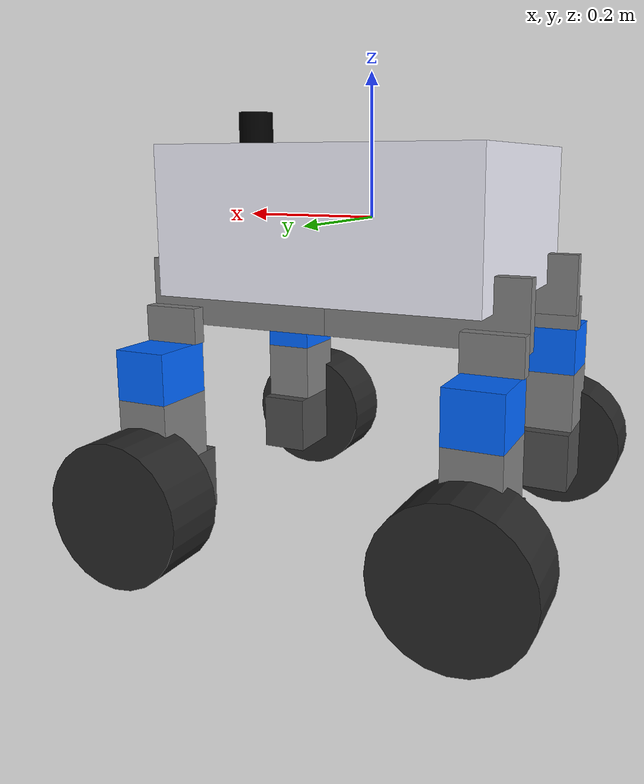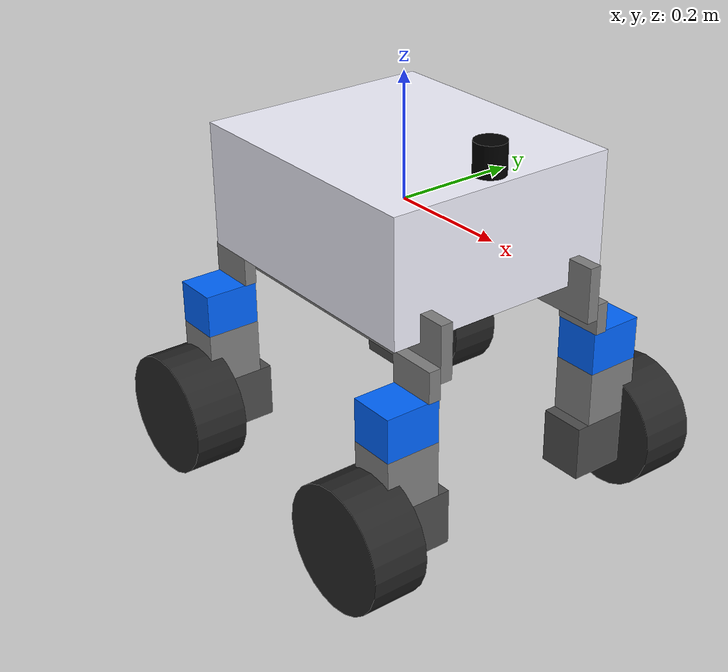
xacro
<?xml version="1.0"?>
<robot name="pf1" xmlns:xacro="http://ros.org/wiki/xacro">

    <!-- define color-->
  <material name="base_link">
    <color rgba="0.95 0.95 1.0 1.0"/>
  </material>
  <material name="lidar">
    <color rgba="0.0 0.0 0.0 1.0"/>
  </material>
  <material name="camera_aluminum">
    <color rgba="0.5 0.5 0.5 1.0"/>
  </material>
  <material name="frame">
    <color rgba="0.5 0.5 0.5 1.0"/>
  </material>
  <material name="gear">
    <color rgba="0.0 0.4 1.0 1.0"/>
  </material>
  <material name="motor">
    <color rgba="0.3 0.3 0.3 1.0"/>
  </material>
  <material name="wheel">
    <color rgba="0.15 0.15 0.15 1.0"/>
  </material>

    <!-- base_footprint-->

    <!-- base_link -->
  <link name="base_link">
    <inertial>
      <origin xyz="0 0 0" rpy="0 0 0"/>
      <mass value="50.0"/>
      <inertia ixx="1.0" ixy="0.0" ixz="0.0" iyy="1.0" iyz="0.0" izz="1.0"/>
    </inertial>
    <visual>
      <geometry>
        <box size="0.45 0.39 0.2"/>
      </geometry>
      <origin xyz="0 0 0" rpy="0 0 0"/>
      <material name="base_link"/>
    </visual>
    <collision>
      <geometry>
        <box size="0.45 0.39 0.2"/>
      </geometry>
      <origin xyz="0 0 0" rpy="0 0 0"/>
      <material name="base_link"/>
    </collision>
  </link>
  <gazebo reference="body_link">
    <material>Gazebo/White</material>
  </gazebo>

    <!-- imu_link -->
  <joint name="imu_link_to_base_link" type="fixed">
    <parent link="base_link"/>
    <child link="imu_link"/>
    <origin xyz="-0 0 0" rpy="0 0 0"/>
  </joint>
  <link name="imu_link">
    <visual>
      <origin xyz="0 0 0.0" rpy="0 0 0"/>
      <geometry>
        <cylinder length="0.01" radius="0.005"/>
      </geometry>
      <material name="lidar"/>
    </visual>
    <collision>
      <origin xyz="0 0 0.0" rpy="0 0 0"/>
      <geometry>
        <cylinder length="0.01" radius="0.005"/>
      </geometry>
      <material name="lidar"/>
    </collision>
  </link>
  <gazebo reference="imu_link">
    <material>Gazebo/Blue</material>
    <gravity>true</gravity>
    <sensor name="imu_sensor" type="imu">
      <always_on>true</always_on>
      <update_rate>100</update_rate>
      <visualize>true</visualize>
      <topic>data</topic>
      <plugin filename="libgazebo_ros_imu_sensor.so" name="imu_plugin">
        <topicName>imu/data</topicName>
        <bodyName>imu_link</bodyName>
        <updateRateHZ>10.0</updateRateHZ>
        <gaussianNoise>0.0</gaussianNoise>
        <xyzOffset>0 0 0</xyzOffset>
        <rpyOffset>0 0 0</rpyOffset>
        <frameName>imu_link</frameName>
      </plugin>
      <pose>0 0 0 0 0 0</pose>
    </sensor>
  </gazebo>

    <!-- base_sensor -->

    <!-- realsense -->

  <!-- set property -->
   <xacro:property name="M_PI" value="3.1415926535897931" />
   <xacro:property name="d435_cam_width" value="0.090"/>
   <xacro:property name="d435_cam_height" value="0.025"/>
   <xacro:property name="d435_cam_depth" value="0.02505"/>
   <xacro:property name="d435_cam_mount_from_center_offset" value="0.0149"/>
   <xacro:property name="d435_cam_depth_px" value="${d435_cam_mount_from_center_offset}"/>
   <xacro:property name="d435_cam_depth_py" value="0.0175"/>
   <xacro:property name="d435_cam_depth_pz" value="${d435_cam_height/2}"/>
   <xacro:property name="deg_to_rad" value="0.01745329251994329577" />

    <!--end of realsense setup-->

    <!-- front_lidar -->
  <joint name="front_lidar_to_base_sensor" type="fixed">
    <parent link="base_link"/>
    <child link="front_lidar"/>

    <origin xyz="0.190 0 0.125" rpy="0 0 0"/>
  </joint>
  <link name="front_lidar">
    <visual>
      <origin xyz="0 0 0.0" rpy="0 0 0"/>
      <geometry>
        <cylinder length="0.05" radius="0.025"/>
      </geometry>
      <material name="lidar"/>
    </visual>
    <collision>
      <origin xyz="0 0 0.0" rpy="0 0 0"/>
      <geometry>
        <cylinder length="0.05" radius="0.025"/>
      </geometry>
      <material name="lidar"/>
    </collision>
  </link>
  <gazebo reference="front_lidar">
    <material>Gazebo/Grey</material>
    <sensor type="ray" name="front_lidar">
      <pose>0 0 0 0 0 0</pose>
      <visualize>true</visualize>
      <update_rate>10</update_rate>
      <ray>
        <scan>
          <horizontal>
            <samples>400</samples>
            <resolution>1</resolution>
            <min_angle>${radians(-180)}</min_angle>
            <max_angle>${radians(180)}</max_angle>
          </horizontal>
        </scan>
        <range>
          <min>0.10</min>
          <max>20.0</max>
          <resolution>0.01</resolution>
        </range>
        <noise>
          <type>gaussian</type>
          <mean>0.0</mean>
          <stddev>0.01</stddev>
        </noise>
      </ray>
      <plugin name="gazebo_ros_lidar_controller" filename="libgazebo_ros_laser.so">
        <topicName>scan</topicName>
        <frameName>front_lidar</frameName>
      </plugin>
    </sensor>
  </gazebo>

    <!-- rear_lidar -->

    <!-- leg_fl -->
  <joint name="frame1_fl_to_base_link" type="fixed">
    <parent link="base_link"/>
    <child  link="frame1_fl"/>
    <origin xyz="0 0.14 -0.1" rpy="0 0 0"/>
  </joint>
  <link name="frame1_fl">
    <visual>
      <geometry>
        <box size="0.27 0.02 0.09"/>
      </geometry>
      <origin xyz="0.135 0 0" rpy="0 0 0"/>
      <material name="frame"/>
    </visual>
    <collision>
      <geometry>
        <box size="0.27 0.02 0.09"/>
      </geometry>
      <origin xyz="0.135 0 0" rpy="0 0 0"/>
      <material name="frame"/>
    </collision>
  </link>
  <gazebo reference="frame1_fl">
    <material>Gazebo/Grey</material>
  </gazebo>

  <joint name="frame2_fl_to_frame1_fl" type="fixed">
    <parent link="frame1_fl"/>
    <child  link="frame2_fl"/>
    <origin xyz="0.23 0.02 -0.045" rpy="0 0 0"/>
  </joint>
  <link name="frame2_fl">
    <visual>
      <geometry>
        <box size="0.08 0.02 0.05"/>
      </geometry>
      <origin xyz="0 0 0" rpy="0 0 0"/>
      <material name="frame"/>
    </visual>
    <collision>
      <geometry>
        <box size="0.08 0.02 0.05"/>
      </geometry>
      <origin xyz="0 0 0" rpy="0 0 0"/>
      <material name="frame"/>
    </collision>
  </link>
  <gazebo reference="frame2_fl">
    <material>Gazebo/Grey</material>
  </gazebo>

  <joint name="gear_fl_to_frame2_fl" type="fixed">
    <parent link="frame2_fl"/>
    <child  link="gear_fl"/>
    <origin xyz="0 0.035 -0.06" rpy="0 0 0"/>
  </joint>
  <link name="gear_fl">
    <visual>
      <geometry>
        <box size="0.075 0.09 0.07"/>
      </geometry>
      <origin xyz="0 0 0" rpy="0 0 0"/>
      <material name="gear"/>
    </visual>
    <collision>
      <geometry>
        <box size="0.075 0.09 0.07"/>
      </geometry>
      <origin xyz="0 0 0" rpy="0 0 0"/>
      <material name="gear"/>
    </collision>
    <inertial>
      <origin xyz="0 0 0" rpy="0 0 0"/>
      <mass value="1.0"/>
      <inertia ixx="1.0" ixy="0.0" ixz="0.0" iyy="1.0" iyz="0.0" izz="1.0"/>
    </inertial>
  </link>
  <gazebo reference="gear_fl">
    <material>Gazebo/Blue</material>
  </gazebo>

  <gazebo reference="frame3_fl_to_gear_fl">
    <material>Gazebo/Blue</material>
  </gazebo>

  <joint name="frame3_fl_to_gear_fl" type="fixed">
    <parent link="gear_fl"/>
    <child  link="frame3_fl"/>
    <origin xyz="0 0.0 -0.08" rpy="0 0 0"/>
  </joint>

  <link name="frame3_fl">
    <visual>
      <geometry>
        <box size="0.075 0.09 0.09"/>
      </geometry>
      <origin xyz="0 0 0" rpy="0 0 0"/>
      <material name="frame"/>
    </visual>
    <collision>
      <geometry>
        <box size="0.075 0.09 0.09"/>
      </geometry>
      <origin xyz="0 0 0" rpy="0 0 0"/>
      <material name="frame"/>
    </collision>
    <inertial>
      <origin xyz="0 0 0" rpy="0 0 0"/>
      <mass value="1.0"/>
      <inertia ixx="1.0" ixy="0.0" ixz="0.0" iyy="1.0" iyz="0.0" izz="1.0"/>
    </inertial>
  </link>
  <gazebo reference="frame3_fl">
    <material>Gazebo/Grey</material>
    <mu1 value="2500" />
    <mu2 value="2500" />
  </gazebo>

  <joint name="motor_fl_to_frame3_fl" type="fixed">
    <parent link="frame3_fl"/>
    <child  link="motor_fl"/>
    <origin xyz="0 -0.02 -0.09" rpy="0 0 0"/>
  </joint>
  <link name="motor_fl">
    <visual>
      <geometry>
        <box size="0.075 0.09 0.09"/>
      </geometry>
      <material name="motor"/>
    </visual>
    <collision>
      <geometry>
        <box size="0.075 0.09 0.09"/>
      </geometry>
      <material name="motor"/>
    </collision>
    <inertial>
      <origin xyz="0 0 0" rpy="0 0 0"/>
      <mass value="1.0"/>
      <inertia ixx="1.0" ixy="0.0" ixz="0.0" iyy="1.0" iyz="0.0" izz="1.0"/>
    </inertial>
  </link>
  <gazebo reference="motor_fl">
    <material>Gazebo/Grey</material>
  </gazebo>

  <joint name="wheel_fl_to_motor_fl" type="continuous">
    <parent link="motor_fl"/>
    <child  link="wheel_fl"/>
    <origin xyz="0 0.09 0" rpy="0 0 0"/>
    <axis xyz="0 1 0"/>
    <limit effort="100" velocity="100"/>
    <dynamics damping="0.1" friction="0.0"/>
  </joint>
  <transmission name="$wheel_fl_trans">
    <type>transmission_interface/SimpleTransmission</type>
    <joint name="wheel_fl_to_motor_fl">
        <hardwareInterface>hardware_interface/VelocityJointInterface</hardwareInterface>
    </joint>
    <actuator name="wheel_fl_motor">
      <hardwareInterface>hardware_interface/VelocityJointInterface</hardwareInterface>
      <mechanismReduction>1</mechanismReduction>
    </actuator>
  </transmission>

  <link name="wheel_fl">
    <visual>
      <geometry>
        <cylinder length="0.09" radius="0.1"/>
      </geometry>
      <origin xyz="0 0 0" rpy="1.57 0 0"/>
      <material name="wheel"/>
    </visual>
    <collision>
      <geometry>
        <cylinder length="0.09" radius="0.1"/>
      </geometry>
      <origin xyz="0 0 0" rpy="1.57 0 0"/>
      <material name="wheel"/>
    </collision>
    <inertial>
      <origin xyz="0 0 0" rpy="0 0 0"/>
      <mass value="10.0"/>
      <inertia ixx="1.0" ixy="0.0" ixz="0.0" iyy="1.0" iyz="0.0" izz="1.0"/>
    </inertial>
  </link>
  <gazebo reference="wheel_fl">
    <material>Gazebo/Black</material>
    <mu1 value="200.0" />
    <mu2 value="100.0" />
    <kp value="10000000.0" />
    <kd value="1.0" />
  </gazebo>

      <!-- leg_bl : mirror leg_fl to the y axis -->
  <joint name="frame1_bl_to_base_link" type="fixed">
    <parent link="base_link"/>
    <child  link="frame1_bl"/>
    <origin xyz="0 0.14 -0.1" rpy="0 0 0"/>
  </joint>
  <link name="frame1_bl">
    <visual>
      <geometry>
        <box size="0.27 0.02 0.09"/>
      </geometry>
      <origin xyz="-0.135 0 0" rpy="0 0 0"/>
      <material name="frame"/>
    </visual>
    <collision>
      <geometry>
        <box size="0.27 0.02 0.09"/>
      </geometry>
      <origin xyz="-0.135 0 0" rpy="0 0 0"/>
      <material name="frame"/>
    </collision>
  </link>
  <gazebo reference="frame1_bl">
    <material>Gazebo/Grey</material>
  </gazebo>

  <joint name="frame2_bl_to_frame1_bl" type="fixed">
    <parent link="frame1_bl"/>
    <child  link="frame2_bl"/>
    <origin xyz="-0.23 0.02 -0.045" rpy="0 0 0"/>
  </joint>
  <link name="frame2_bl">
    <visual>
      <geometry>
        <box size="0.08 0.02 0.05"/>
      </geometry>
      <origin xyz="0 0 0" rpy="0 0 0"/>
      <material name="frame"/>
    </visual>
    <collision>
      <geometry>
        <box size="0.08 0.02 0.05"/>
      </geometry>
      <origin xyz="0 0 0" rpy="0 0 0"/>
      <material name="frame"/>
    </collision>
  </link>
  <gazebo reference="frame2_bl">
    <material>Gazebo/Grey</material>
  </gazebo>

  <joint name="gear_bl_to_frame2_bl" type="fixed">
    <parent link="frame2_bl"/>
    <child  link="gear_bl"/>
    <origin xyz="0 0.035 -0.06" rpy="0 0 0"/>
  </joint>
  <link name="gear_bl">
    <visual>
      <geometry>
        <box size="0.075 0.09 0.07"/>
      </geometry>
      <origin xyz="0 0 0" rpy="0 0 0"/>
      <material name="gear"/>
    </visual>
    <collision>
      <geometry>
        <box size="0.075 0.09 0.07"/>
      </geometry>
      <origin xyz="0 0 0" rpy="0 0 0"/>
      <material name="gear"/>
    </collision>
    <inertial>
      <origin xyz="0 0 0" rpy="0 0 0"/>
      <mass value="1.0"/>
      <inertia ixx="1.0" ixy="0.0" ixz="0.0" iyy="1.0" iyz="0.0" izz="1.0"/>
    </inertial>
  </link>
  <gazebo reference="gear_bl">
    <material>Gazebo/Blue</material>
  </gazebo>

  <gazebo reference="frame3_bl_to_gear_bl">
    <material>Gazebo/Blue</material>
  </gazebo>

  <joint name="frame3_bl_to_gear_bl" type="fixed">
    <parent link="gear_bl"/>
    <child  link="frame3_bl"/>
    <origin xyz="0 0.0 -0.08" rpy="0 0 0"/>
  </joint>

  <link name="frame3_bl">
    <visual>
      <geometry>
        <box size="0.075 0.09 0.09"/>
      </geometry>
      <origin xyz="0 0 0" rpy="0 0 0"/>
      <material name="frame"/>
    </visual>
    <collision>
      <geometry>
        <box size="0.075 0.09 0.09"/>
      </geometry>
      <origin xyz="0 0 0" rpy="0 0 0"/>
      <material name="frame"/>
    </collision>
    <inertial>
      <origin xyz="0 0 0" rpy="0 0 0"/>
      <mass value="1.0"/>
      <inertia ixx="1.0" ixy="0.0" ixz="0.0" iyy="1.0" iyz="0.0" izz="1.0"/>
    </inertial>
  </link>
  <gazebo reference="frame3_bl">
    <material>Gazebo/Grey</material>
    <mu1 value="2500" />
    <mu2 value="2500" />
  </gazebo>

  <joint name="motor_bl_to_frame3_bl" type="fixed">
    <parent link="frame3_bl"/>
    <child  link="motor_bl"/>
    <origin xyz="0 -0.02 -0.09" rpy="0 0 0"/>
  </joint>
  <link name="motor_bl">
    <visual>
      <geometry>
        <box size="0.075 0.09 0.09"/>
      </geometry>
      <material name="motor"/>
    </visual>
    <collision>
      <geometry>
        <box size="0.075 0.09 0.09"/>
      </geometry>
      <material name="motor"/>
    </collision>
    <inertial>
      <origin xyz="0 0 0" rpy="0 0 0"/>
      <mass value="1.0"/>
      <inertia ixx="1.0" ixy="0.0" ixz="0.0" iyy="1.0" iyz="0.0" izz="1.0"/>
    </inertial>
  </link>
  <gazebo reference="motor_bl">
    <material>Gazebo/Grey</material>
  </gazebo>

  <joint name="wheel_bl_to_motor_bl" type="continuous">
    <parent link="motor_bl"/>
    <child  link="wheel_bl"/>
    <origin xyz="0 0.09 0" rpy="0 0 0"/>
    <axis xyz="0 1 0"/>
    <limit effort="100" velocity="100"/>
    <dynamics damping="0.1" friction="0.0"/>
  </joint>
  <transmission name="$wheel_bl_trans">
    <type>transmission_interface/SimpleTransmission</type>
    <joint name="wheel_bl_to_motor_bl">
        <hardwareInterface>hardware_interface/VelocityJointInterface</hardwareInterface>
    </joint>
    <actuator name="wheel_bl_motor">
      <hardwareInterface>hardware_interface/VelocityJointInterface</hardwareInterface>
      <mechanismReduction>1</mechanismReduction>
    </actuator>
  </transmission>

  <link name="wheel_bl">
    <visual>
      <geometry>
        <cylinder length="0.09" radius="0.1"/>
      </geometry>
      <origin xyz="0 0 0" rpy="1.57 0 0"/>
      <material name="wheel"/>
    </visual>>
    <collision>
      <geometry>
        <cylinder length="0.09" radius="0.1"/>
      </geometry>
      <origin xyz="0 0 0" rpy="1.57 0 0"/>
      <material name="wheel"/>
    </collision>
    <inertial>
      <origin xyz="0 0 0" rpy="0 0 0"/>
      <mass value="10.0"/>
      <inertia ixx="1.0" ixy="0.0" ixz="0.0" iyy="1.0" iyz="0.0" izz="1.0"/>
    </inertial>
  </link>
  <gazebo reference="wheel_bl">
    <material>Gazebo/Black</material>
    <mu1 value="200.0" />
    <mu2 value="100.0" />
    <kp value="10000000.0" />
    <kd value="1.0" />
  </gazebo>

    <!-- leg_fr -->
  <joint name="frame1_fr_to_base_link" type="fixed">
    <parent link="base_link"/>
    <child  link="frame1_fr"/>
    <origin xyz="0 -0.14 -0.1" rpy="0 0 0"/>
  </joint>
  <link name="frame1_fr">
    <visual>
      <geometry>
        <box size="0.27 0.02 0.09"/>
      </geometry>
      <origin xyz="0.135 0 0" rpy="0 0 0"/>
      <material name="frame"/>
    </visual>
    <collision>
      <geometry>
        <box size="0.27 0.02 0.09"/>
      </geometry>
      <origin xyz="0.135 0 0" rpy="0 0 0"/>
      <material name="frame"/>
    </collision>
  </link>
  <gazebo reference="frame1_fr">
    <material>Gazebo/Grey</material>
  </gazebo>

  <joint name="frame2_fr_to_frame1_fr" type="fixed">
    <parent link="frame1_fr"/>
    <child  link="frame2_fr"/>
    <origin xyz="0.23 -0.02 -0.045" rpy="0 0 0"/>
  </joint>
  <link name="frame2_fr">
    <visual>
      <geometry>
        <box size="0.08 0.02 0.05"/>
      </geometry>
      <origin xyz="0 0 0" rpy="0 0 0"/>
      <material name="frame"/>
    </visual>
    <collision>
      <geometry>
        <box size="0.08 0.02 0.05"/>
      </geometry>
      <origin xyz="0 0 0" rpy="0 0 0"/>
      <material name="frame"/>
    </collision>
  </link>
  <gazebo reference="frame2_fr">
    <material>Gazebo/Grey</material>
  </gazebo>

  <joint name="gear_fr_to_frame2_fr" type="fixed">
    <parent link="frame2_fr"/>
    <child  link="gear_fr"/>
    <origin xyz="0 -0.035 -0.06" rpy="0 0 0"/>
  </joint>
  <link name="gear_fr">
    <visual>
      <geometry>
        <box size="0.075 0.09 0.07"/>
      </geometry>
      <origin xyz="0 0 0" rpy="0 0 0"/>
      <material name="gear"/>
    </visual>
    <collision>
      <geometry>
        <box size="0.075 0.09 0.07"/>
      </geometry>
      <origin xyz="0 0 0" rpy="0 0 0"/>
      <material name="gear"/>
    </collision>
    <inertial>
      <origin xyz="0 0 0" rpy="0 0 0"/>
      <mass value="1.0"/>
      <inertia ixx="1.0" ixy="0.0" ixz="0.0" iyy="1.0" iyz="0.0" izz="1.0"/>
    </inertial>
  </link>
  <gazebo reference="gear_fr">
    <material>Gazebo/Blue</material>
  </gazebo>

  <gazebo reference="frame3_fr_to_gear_fr">
    <material>Gazebo/Blue</material>
  </gazebo>

  <joint name="frame3_fr_to_gear_fr" type="fixed">
    <parent link="gear_fr"/>
    <child  link="frame3_fr"/>
    <origin xyz="0 0.0 -0.08" rpy="0 0 0"/>
  </joint>

  <link name="frame3_fr">
    <visual>
      <geometry>
        <box size="0.075 0.09 0.09"/>
      </geometry>
      <origin xyz="0 0 0" rpy="0 0 0"/>
      <material name="frame"/>
    </visual>
    <collision>
      <geometry>
        <box size="0.075 0.09 0.09"/>
      </geometry>
      <origin xyz="0 0 0" rpy="0 0 0"/>
      <material name="frame"/>
    </collision>
    <inertial>
      <origin xyz="0 0 0" rpy="0 0 0"/>
      <mass value="1.0"/>
      <inertia ixx="1.0" ixy="0.0" ixz="0.0" iyy="1.0" iyz="0.0" izz="1.0"/>
    </inertial>
  </link>
  <gazebo reference="frame3_fr">
    <material>Gazebo/Grey</material>
    <mu1 value="2500" />
    <mu2 value="2500" />
  </gazebo>

  <joint name="motor_fr_to_frame3_fr" type="fixed">
    <parent link="frame3_fr"/>
    <child  link="motor_fr"/>
    <origin xyz="0 0.02 -0.09" rpy="0 0 0"/>
  </joint>
  <link name="motor_fr">
    <visual>
      <geometry>
        <box size="0.075 0.09 0.09"/>
      </geometry>
      <material name="motor"/>
    </visual>
    <collision>
      <geometry>
        <box size="0.075 0.09 0.09"/>
      </geometry>
      <material name="motor"/>
    </collision>
    <inertial>
      <origin xyz="0 0 0" rpy="0 0 0"/>
      <mass value="1.0"/>
      <inertia ixx="1.0" ixy="0.0" ixz="0.0" iyy="1.0" iyz="0.0" izz="1.0"/>
    </inertial>
  </link>
  <gazebo reference="motor_fr">
    <material>Gazebo/Grey</material>
  </gazebo>

  <joint name="wheel_fr_to_motor_fr" type="continuous">
    <parent link="motor_fr"/>
    <child  link="wheel_fr"/>
    <origin xyz="0 -0.09 0" rpy="0 0 0"/>
    <axis xyz="0 1 0"/>
    <limit effort="100" velocity="100"/>
    <dynamics damping="0.1" friction="0.0"/>
  </joint>
  <transmission name="$wheel_fr_trans">
    <type>transmission_interface/SimpleTransmission</type>
    <joint name="wheel_fr_to_motor_fr">
        <hardwareInterface>hardware_interface/VelocityJointInterface</hardwareInterface>
    </joint>
    <actuator name="wheel_fr_motor">
      <hardwareInterface>hardware_interface/VelocityJointInterface</hardwareInterface>
      <mechanismReduction>1</mechanismReduction>
    </actuator>
  </transmission>

  <link name="wheel_fr">
    <visual>
      <geometry>
        <cylinder length="0.09" radius="0.1"/>
      </geometry>
      <origin xyz="0 0 0" rpy="1.57 0 0"/>
      <material name="wheel"/>
    </visual>
    <collision>
      <geometry>
        <cylinder length="0.09" radius="0.1"/>
      </geometry>
      <origin xyz="0 0 0" rpy="1.57 0 0"/>
      <material name="wheel"/>
    </collision>
    <inertial>
      <origin xyz="0 0 0" rpy="0 0 0"/>
      <mass value="10.0"/>
      <inertia ixx="1.0" ixy="0.0" ixz="0.0" iyy="1.0" iyz="0.0" izz="1.0"/>
    </inertial>
  </link>
  <gazebo reference="wheel_fr">
    <material>Gazebo/Black</material>
    <mu1 value="200.0" />
    <mu2 value="100.0" />
    <kp value="10000000.0" />
    <kd value="1.0" />
  </gazebo>

    <!-- leg_br -->
  <joint name="frame1_br_to_base_link" type="fixed">
    <parent link="base_link"/>
    <child  link="frame1_br"/>
    <origin xyz="0 -0.14 -0.1" rpy="0 0 0"/>
  </joint>
  <link name="frame1_br">
    <visual>
      <geometry>
        <box size="0.27 0.02 0.09"/>
      </geometry>
      <origin xyz="-0.135 0 0" rpy="0 0 0"/>
      <material name="frame"/>
    </visual>
    <collision>
      <geometry>
        <box size="0.27 0.02 0.09"/>
      </geometry>
      <origin xyz="-0.135 0 0" rpy="0 0 0"/>
      <material name="frame"/>
    </collision>
  </link>
  <gazebo reference="frame1_br">
    <material>Gazebo/Grey</material>
  </gazebo>

  <joint name="frame2_br_to_frame1_br" type="fixed">
    <parent link="frame1_br"/>
    <child  link="frame2_br"/>
    <origin xyz="-0.23 -0.02 -0.045" rpy="0 0 0"/>
  </joint>
  <link name="frame2_br">
    <visual>
      <geometry>
        <box size="0.08 0.02 0.05"/>
      </geometry>
      <origin xyz="0 0 0" rpy="0 0 0"/>
      <material name="frame"/>
    </visual>
    <collision>
      <geometry>
        <box size="0.08 0.02 0.05"/>
      </geometry>
      <origin xyz="0 0 0" rpy="0 0 0"/>
      <material name="frame"/>
    </collision>
  </link>
  <gazebo reference="frame2_br">
    <material>Gazebo/Grey</material>
  </gazebo>

  <joint name="gear_br_to_frame2_br" type="fixed">
    <parent link="frame2_br"/>
    <child  link="gear_br"/>
    <origin xyz="0 -0.035 -0.06" rpy="0 0 0"/>
  </joint>
  <link name="gear_br">
    <visual>
      <geometry>
        <box size="0.075 0.09 0.07"/>
      </geometry>
      <origin xyz="0 0 0" rpy="0 0 0"/>
      <material name="gear"/>
    </visual>
    <collision>
      <geometry>
        <box size="0.075 0.09 0.07"/>
      </geometry>
      <origin xyz="0 0 0" rpy="0 0 0"/>
      <material name="gear"/>
    </collision>
    <inertial>
      <origin xyz="0 0 0" rpy="0 0 0"/>
      <mass value="1.0"/>
      <inertia ixx="1.0" ixy="0.0" ixz="0.0" iyy="1.0" iyz="0.0" izz="1.0"/>
    </inertial>
  </link>
  <gazebo reference="gear_br">
    <material>Gazebo/Blue</material>
  </gazebo>

  <gazebo reference="frame3_br_to_gear_br">
    <material>Gazebo/Blue</material>
  </gazebo>

  <joint name="frame3_br_to_gear_br" type="fixed">
    <parent link="gear_br"/>
    <child  link="frame3_br"/>
    <origin xyz="0 0.0 -0.08" rpy="0 0 0"/>
  </joint>

  <link name="frame3_br">
    <visual>
      <geometry>
        <box size="0.075 0.09 0.09"/>
      </geometry>
      <origin xyz="0 0 0" rpy="0 0 0"/>
      <material name="frame"/>
    </visual>
    <collision>
      <geometry>
        <box size="0.075 0.09 0.09"/>
      </geometry>
      <origin xyz="0 0 0" rpy="0 0 0"/>
      <material name="frame"/>
    </collision>
    <inertial>
      <origin xyz="0 0 0" rpy="0 0 0"/>
      <mass value="1.0"/>
      <inertia ixx="1.0" ixy="0.0" ixz="0.0" iyy="1.0" iyz="0.0" izz="1.0"/>
    </inertial>
  </link>
  <gazebo reference="frame3_br">
    <material>Gazebo/Green</material>
    <mu1 value="2500" />
    <mu2 value="2500" />
  </gazebo>

  <joint name="motor_br_to_frame3_br" type="fixed">
    <parent link="frame3_br"/>
    <child  link="motor_br"/>
    <origin xyz="0 0.02 -0.09" rpy="0 0 0"/>
  </joint>
  <link name="motor_br">
    <visual>
      <geometry>
        <box size="0.075 0.09 0.09"/>
      </geometry>
      <material name="motor"/>
    </visual>
    <collision>
      <geometry>
        <box size="0.075 0.09 0.09"/>
      </geometry>
      <material name="motor"/>
    </collision>
    <inertial>
      <origin xyz="0 0 0" rpy="0 0 0"/>
      <mass value="1.0"/>
      <inertia ixx="1.0" ixy="0.0" ixz="0.0" iyy="1.0" iyz="0.0" izz="1.0"/>
    </inertial>
  </link>
  <gazebo reference="motor_br">
    <material>Gazebo/Grey</material>
  </gazebo>

  <joint name="wheel_br_to_motor_br" type="continuous">
    <parent link="motor_br"/>
    <child  link="wheel_br"/>
    <origin xyz="0 -0.09 0" rpy="0 0 0"/>
    <axis xyz="0 1 0"/>
    <limit effort="100" velocity="100"/>
    <dynamics damping="0.1" friction="0.0"/>
  </joint>
  <transmission name="$wheel_br_trans">
    <type>transmission_interface/SimpleTransmission</type>
    <joint name="wheel_br_to_motor_br">
        <hardwareInterface>hardware_interface/VelocityJointInterface</hardwareInterface>
    </joint>
    <actuator name="wheel_br_motor">
      <hardwareInterface>hardware_interface/VelocityJointInterface</hardwareInterface>
      <mechanismReduction>1</mechanismReduction>
    </actuator>
  </transmission>

  <link name="wheel_br">
    <visual>
      <geometry>
        <cylinder length="0.09" radius="0.1"/>
      </geometry>
      <origin xyz="0 0 0" rpy="1.57 0 0"/>
      <material name="wheel"/>
    </visual>
    <collision>
      <geometry>
        <cylinder length="0.09" radius="0.1"/>
      </geometry>
      <origin xyz="0 0 0" rpy="1.57 0 0"/>
      <material name="wheel"/>
    </collision>
    <inertial>
      <origin xyz="0 0 0" rpy="0 0 0"/>
      <mass value="10.0"/>
      <inertia ixx="1.0" ixy="0.0" ixz="0.0" iyy="1.0" iyz="0.0" izz="1.0"/>
    </inertial>
  </link>
  <gazebo reference="wheel_br">
    <material>Gazebo/Black</material>
    <mu1 value="200.0" />
    <mu2 value="100.0" />
    <kp value="10000000.0" />
    <kd value="1.0" />
  </gazebo>

  <gazebo>
    <plugin name="gazebo_ros_control" filename="libgazebo_ros_control.so">
      <robotNamespace>/</robotNamespace>
      <robotSimType>gazebo_ros_control/DefaultRobotHWSim</robotSimType>
      <legacyModeNS>true</legacyModeNS>
    </plugin>
  </gazebo>
</robot>
